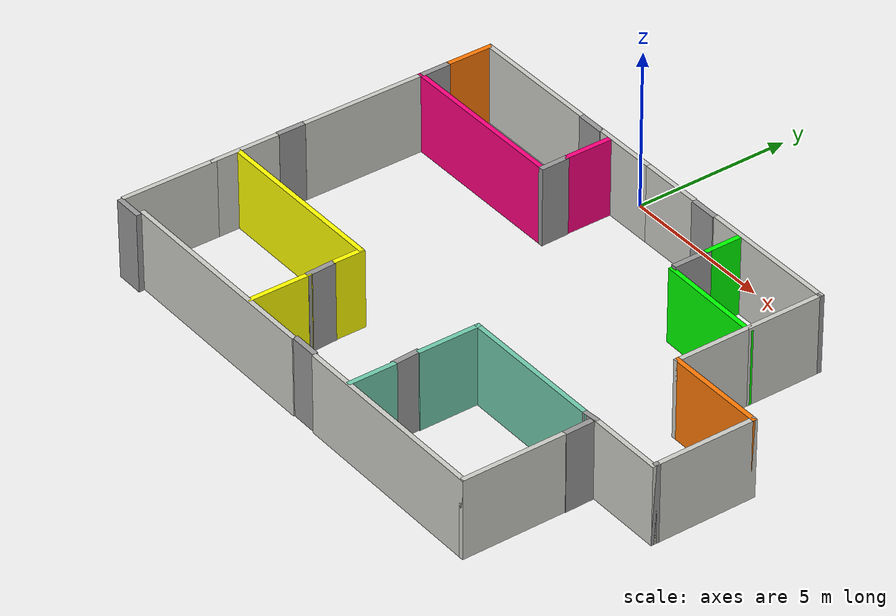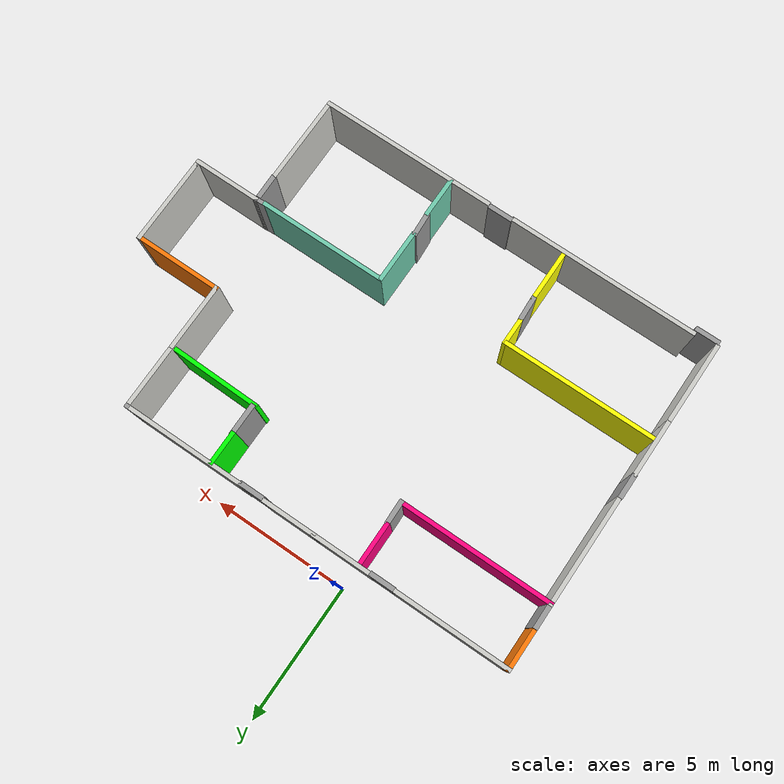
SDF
<?xml version='1.0'?>
<sdf version='1.6'>
  <model name='house'>
    <pose frame=''>3.0363 -6.8893 0 0 -0 0</pose>
    <link name='Door_1'>
      <collision name='Door_1_Collision'>
        <geometry>
          <box>
            <size>0.9 0.17 2.5</size>
          </box>
        </geometry>
        <pose frame=''>0 0 1.25 0 -0 0</pose>
      </collision>
      <visual name='Door_1_Visual'>
        <pose frame=''>0 0 1.25 0 -0 0</pose>
        <geometry>
          <box>
            <size>0.9 0.17 2.5</size>
          </box>
        </geometry>
        <material>
          <script>
            <uri>file://media/materials/scripts/gazebo.material</uri>
            <name>Gazebo/Grey</name>
          </script>
        </material>
      </visual>
      <pose frame=''>-8.7163 4.1593 0 0 -0 1.5789</pose>
    </link>
    <link name='Door_10'>
      <collision name='Door_10_Collision'>
        <geometry>
          <box>
            <size>0.9 0.17 2.5</size>
          </box>
        </geometry>
        <pose frame=''>0 0 1.25 0 -0 0</pose>
      </collision>
      <visual name='Door_10_Visual'>
        <pose frame=''>0 0 1.25 0 -0 0</pose>
        <geometry>
          <box>
            <size>0.9 0.17 2.5</size>
          </box>
        </geometry>
        <material>
          <script>
            <uri>file://media/materials/scripts/gazebo.material</uri>
            <name>Gazebo/Grey</name>
          </script>
        </material>
      </visual>
      <pose frame=''>-0.531043 -5.96555 0 0 -0 0</pose>
    </link>
    <link name='Door_12'>
      <collision name='Door_12_Collision'>
        <geometry>
          <box>
            <size>0.9 0.17 2.5</size>
          </box>
        </geometry>
        <pose frame=''>0 0 1.25 0 -0 0</pose>
      </collision>
      <visual name='Door_12_Visual'>
        <pose frame=''>0 0 1.25 0 -0 0</pose>
        <geometry>
          <box>
            <size>0.9 0.17 2.5</size>
          </box>
        </geometry>
        <material>
          <script>
            <uri>file://media/materials/scripts/gazebo.material</uri>
            <name>Gazebo/Grey</name>
          </script>
        </material>
      </visual>
      <pose frame=''>-3.03671 -3.72355 0 0 -0 1.62276</pose>
    </link>
    <link name='Door_13'>
      <collision name='Door_13_Collision'>
        <geometry>
          <box>
            <size>0.9 0.17 2.5</size>
          </box>
        </geometry>
        <pose frame=''>0 0 1.25 0 -0 0</pose>
      </collision>
      <visual name='Door_13_Visual'>
        <pose frame=''>0 0 1.25 0 -0 0</pose>
        <geometry>
          <box>
            <size>0.9 0.17 2.5</size>
          </box>
        </geometry>
        <material>
          <script>
            <uri>file://media/materials/scripts/gazebo.material</uri>
            <name>Gazebo/Grey</name>
          </script>
        </material>
      </visual>
      <pose frame=''>6.35043 -2.40266 0 0 -0 1.58874</pose>
    </link>
    <link name='Door_15'>
      <collision name='Door_15_Collision'>
        <geometry>
          <box>
            <size>0.9 0.17 2.5</size>
          </box>
        </geometry>
        <pose frame=''>0 0 1.25 0 -0 0</pose>
      </collision>
      <visual name='Door_15_Visual'>
        <pose frame=''>0 0 1.25 0 -0 0</pose>
        <geometry>
          <box>
            <size>0.9 0.17 2.5</size>
          </box>
        </geometry>
        <material>
          <script>
            <uri>file://media/materials/scripts/gazebo.material</uri>
            <name>Gazebo/Grey</name>
          </script>
        </material>
      </visual>
      <pose frame=''>1.39928 -4.18011 0 0 -0 1.63322</pose>
    </link>
    <link name='Door_2'>
      <collision name='Door_2_Collision'>
        <geometry>
          <box>
            <size>0.9 0.17 2.5</size>
          </box>
        </geometry>
        <pose frame=''>0 0 1.25 0 -0 0</pose>
      </collision>
      <visual name='Door_2_Visual'>
        <pose frame=''>0 0 1.25 0 -0 0</pose>
        <geometry>
          <box>
            <size>0.9 0.17 2.5</size>
          </box>
        </geometry>
        <material>
          <script>
            <uri>file://media/materials/scripts/gazebo.material</uri>
            <name>Gazebo/Grey</name>
          </script>
        </material>
      </visual>
      <pose frame=''>-4.10768 6.02507 0 0 -0 0</pose>
    </link>
    <link name='Door_3'>
      <collision name='Door_3_Collision'>
        <geometry>
          <box>
            <size>0.9 0.17 2.5</size>
          </box>
        </geometry>
        <pose frame=''>0 0 1.25 0 -0 0</pose>
      </collision>
      <visual name='Door_3_Visual'>
        <pose frame=''>0 0 1.25 0 -0 0</pose>
        <geometry>
          <box>
            <size>0.9 0.17 2.5</size>
          </box>
        </geometry>
        <material>
          <script>
            <uri>file://media/materials/scripts/gazebo.material</uri>
            <name>Gazebo/Grey</name>
          </script>
        </material>
      </visual>
      <pose frame=''>-3.22734 4.07462 0 0 -0 1.58824</pose>
    </link>
    <link name='Door_4'>
      <collision name='Door_4_Collision'>
        <geometry>
          <box>
            <size>0.9 0.17 2.5</size>
          </box>
        </geometry>
        <pose frame=''>0 0 1.25 0 -0 0</pose>
      </collision>
      <visual name='Door_4_Visual'>
        <pose frame=''>0 0 1.25 0 -0 0</pose>
        <geometry>
          <box>
            <size>0.9 0.17 2.5</size>
          </box>
        </geometry>
        <material>
          <script>
            <uri>file://media/materials/scripts/gazebo.material</uri>
            <name>Gazebo/Grey</name>
          </script>
        </material>
      </visual>
      <pose frame=''>0.818946 6.01439 0 0 -0 0</pose>
    </link>
    <link name='Door_5'>
      <collision name='Door_5_Collision'>
        <geometry>
          <box>
            <size>1.2 0.17 2.5</size>
          </box>
        </geometry>
        <pose frame=''>0 0 1.25 0 -0 0</pose>
      </collision>
      <visual name='Door_5_Visual'>
        <pose frame=''>0 0 1.25 0 -0 0</pose>
        <geometry>
          <box>
            <size>1.2 0.17 2.5</size>
          </box>
        </geometry>
        <material>
          <script>
            <uri>file://media/materials/scripts/gazebo.material</uri>
            <name>Gazebo/Grey</name>
          </script>
        </material>
      </visual>
      <pose frame=''>2.36879 4.36481 0 0 -0 1.56882</pose>
    </link>
    <link name='Door_6'>
      <collision name='Door_6_Collision'>
        <geometry>
          <box>
            <size>0.9 0.17 2.5</size>
          </box>
        </geometry>
        <pose frame=''>0 0 1.25 0 -0 0</pose>
      </collision>
      <visual name='Door_6_Visual'>
        <pose frame=''>0 0 1.25 0 -0 0</pose>
        <geometry>
          <box>
            <size>0.9 0.17 2.5</size>
          </box>
        </geometry>
        <material>
          <script>
            <uri>file://media/materials/scripts/gazebo.material</uri>
            <name>Gazebo/Grey</name>
          </script>
        </material>
      </visual>
      <pose frame=''>-8.73622 -0.642024 0 0 -0 1.56903</pose>
    </link>
    <link name='Door_8'>
      <collision name='Door_8_Collision'>
        <geometry>
          <box>
            <size>0.9 0.17 2.5</size>
          </box>
        </geometry>
        <pose frame=''>0 0 1.25 0 -0 0</pose>
      </collision>
      <visual name='Door_8_Visual'>
        <pose frame=''>0 0 1.25 0 -0 0</pose>
        <geometry>
          <box>
            <size>0.9 0.17 2.5</size>
          </box>
        </geometry>
        <material>
          <script>
            <uri>file://media/materials/scripts/gazebo.material</uri>
            <name>Gazebo/Grey</name>
          </script>
        </material>
      </visual>
      <pose frame=''>-8.29169 -6.18561 0 0 -0 0</pose>
    </link>
    <link name='Wall_0'>
      <collision name='Wall_0_Collision'>
        <geometry>
          <box>
            <size>1.5 0.15 2.5</size>
          </box>
        </geometry>
        <pose frame=''>0 0 1.25 0 -0 0</pose>
      </collision>
      <visual name='Wall_0_Visual'>
        <pose frame=''>0 0 1.25 0 -0 0</pose>
        <geometry>
          <box>
            <size>1.5 0.15 2.5</size>
          </box>
        </geometry>
        <material>
          <script>
            <uri>file://media/materials/scripts/gazebo.material</uri>
            <name>Gazebo/Grey</name>
          </script>
          <ambient>0.996078 0.47451 0.0196078 1</ambient>
        </material>
        <meta>
          <layer>0</layer>
        </meta>
      </visual>
      <pose frame=''>-8.7263 5.3643 0 0 0 -1.5708</pose>
    </link>
    <link name='Wall_10'>
      <collision name='Wall_10_Collision'>
        <geometry>
          <box>
            <size>2 0.15 2.5</size>
          </box>
        </geometry>
        <pose frame=''>0 0 1.25 0 -0 0</pose>
      </collision>
      <visual name='Wall_10_Visual'>
        <pose frame=''>0 0 1.25 0 -0 0</pose>
        <geometry>
          <box>
            <size>2 0.15 2.5</size>
          </box>
        </geometry>
        <material>
          <script>
            <uri>file://media/materials/scripts/gazebo.material</uri>
            <name>Gazebo/CeilingTiled</name>
          </script>
          <ambient>0.996078 0.47451 0.0196078 1</ambient>
        </material>
        <meta>
          <layer>0</layer>
        </meta>
      </visual>
      <pose frame=''>-0.635132 6.04328 0 0 -0 0</pose>
    </link>
    <link name='Wall_12'>
      <collision name='Wall_12_Collision'>
        <geometry>
          <box>
            <size>4.5 0.15 2.5</size>
          </box>
        </geometry>
        <pose frame=''>0 0 1.25 0 -0 0</pose>
      </collision>
      <visual name='Wall_12_Visual'>
        <pose frame=''>0 0 1.25 0 -0 0</pose>
        <geometry>
          <box>
            <size>4.5 0.15 2.5</size>
          </box>
        </geometry>
        <material>
          <script>
            <uri>file://media/materials/scripts/gazebo.material</uri>
            <name>Gazebo/CeilingTiled</name>
          </script>
          <ambient>0.996078 0.47451 0.0196078 1</ambient>
        </material>
        <meta>
          <layer>0</layer>
        </meta>
      </visual>
      <pose frame=''>3.4436 6.04084 0 0 -0 0</pose>
    </link>
    <link name='Wall_13'>
      <collision name='Wall_13_Collision'>
        <geometry>
          <box>
            <size>0.16 0.15 2.5</size>
          </box>
        </geometry>
        <pose frame=''>0 0 1.25 0 -0 0</pose>
      </collision>
      <visual name='Wall_13_Visual'>
        <pose frame=''>0 0 1.25 0 -0 0</pose>
        <geometry>
          <box>
            <size>0.16 0.15 2.5</size>
          </box>
        </geometry>
        <material>
          <script>
            <uri>file://media/materials/scripts/gazebo.material</uri>
            <name>Gazebo/Grey</name>
          </script>
          <ambient>1 1 1 1</ambient>
        </material>
        <meta>
          <layer>0</layer>
        </meta>
      </visual>
      <pose frame=''>5.6236 6.04084 0 0 -0 0</pose>
    </link>
    <link name='Wall_14'>
      <collision name='Wall_14_Collision'>
        <geometry>
          <box>
            <size>2.5 0.15 2.5</size>
          </box>
        </geometry>
        <pose frame=''>0 0 1.25 0 -0 0</pose>
      </collision>
      <visual name='Wall_14_Visual'>
        <pose frame=''>0 0 1.25 0 -0 0</pose>
        <geometry>
          <box>
            <size>2.5 0.15 2.5</size>
          </box>
        </geometry>
        <material>
          <script>
            <uri>file://media/materials/scripts/gazebo.material</uri>
            <name>Gazebo/CeilingTiled</name>
          </script>
          <ambient>0.996078 0.47451 0.0196078 1</ambient>
        </material>
        <meta>
          <layer>0</layer>
        </meta>
      </visual>
      <pose frame=''>5.62865 4.86607 0 0 0 -1.57075</pose>
    </link>
    <link name='Wall_16'>
      <collision name='Wall_16_Collision'>
        <geometry>
          <box>
            <size>1.25 0.15 2.5</size>
          </box>
        </geometry>
        <pose frame=''>0 0 1.25 0 -0 0</pose>
      </collision>
      <visual name='Wall_16_Visual'>
        <pose frame=''>0 0 1.25 0 -0 0</pose>
        <geometry>
          <box>
            <size>1.25 0.15 2.5</size>
          </box>
        </geometry>
        <material>
          <script>
            <uri>file://media/materials/scripts/gazebo.material</uri>
            <name>Gazebo/Grey</name>
          </script>
          <ambient>0 1 0 1</ambient>
        </material>
        <meta>
          <layer>0</layer>
        </meta>
      </visual>
      <pose frame=''>2.3586 5.44629 0 0 0 -1.5708</pose>
    </link>
    <link name='Wall_2'>
      <collision name='Wall_2_Collision'>
        <geometry>
          <box>
            <size>4.25 0.15 2.5</size>
          </box>
        </geometry>
        <pose frame=''>0 0 1.25 0 -0 0</pose>
      </collision>
      <visual name='Wall_2_Visual'>
        <pose frame=''>0 0 1.25 0 -0 0</pose>
        <geometry>
          <box>
            <size>4.25 0.15 2.5</size>
          </box>
        </geometry>
        <material>
          <script>
            <uri>file://media/materials/scripts/gazebo.material</uri>
            <name>Gazebo/CeilingTiled</name>
          </script>
          <ambient>0.996078 0.47451 0.0196078 1</ambient>
        </material>
        <meta>
          <layer>0</layer>
        </meta>
      </visual>
      <pose frame=''>-6.6763 6.0393 0 0 -0 0</pose>
    </link>
    <link name='Wall_24'>
      <collision name='Wall_24_Collision'>
        <geometry>
          <box>
            <size>3.45117 0.15 2.4</size>
          </box>
        </geometry>
        <pose frame=''>0 0 1.2 0 -0 0</pose>
      </collision>
      <visual name='Wall_24_Visual'>
        <pose frame=''>0 0 1.2 0 -0 0</pose>
        <geometry>
          <box>
            <size>3.45117 0.15 2.4</size>
          </box>
        </geometry>
        <material>
          <script>
            <uri>file://media/materials/scripts/gazebo.material</uri>
            <name>Gazebo/Grey</name>
          </script>
          <ambient>0 1 0 1</ambient>
        </material>
        <meta>
          <layer>0</layer>
        </meta>
      </visual>
      <pose frame=''>3.9782 3.7223 0 0 0 -0.01878</pose>
    </link>
    <link name='Wall_26'>
      <collision name='Wall_26_Collision'>
        <geometry>
          <box>
            <size>4 0.15 2.5</size>
          </box>
        </geometry>
        <pose frame=''>0 0 1.25 0 -0 0</pose>
      </collision>
      <visual name='Wall_26_Visual'>
        <pose frame=''>0 0 1.25 0 -0 0</pose>
        <geometry>
          <box>
            <size>4 0.15 2.5</size>
          </box>
        </geometry>
        <material>
          <script>
            <uri>file://media/materials/scripts/gazebo.material</uri>
            <name>Gazebo/CeilingTiled</name>
          </script>
          <ambient>0.996078 0.47451 0.0196078 1</ambient>
        </material>
        <meta>
          <layer>0</layer>
        </meta>
      </visual>
      <pose frame=''>-8.72412 1.77454 0 0 0 -1.5708</pose>
    </link>
    <link name='Wall_28'>
      <collision name='Wall_28_Collision'>
        <geometry>
          <box>
            <size>2.25 0.15 2.5</size>
          </box>
        </geometry>
        <pose frame=''>0 0 1.25 0 -0 0</pose>
      </collision>
      <visual name='Wall_28_Visual'>
        <pose frame=''>0 0 1.25 0 -0 0</pose>
        <geometry>
          <box>
            <size>2.25 0.15 2.5</size>
          </box>
        </geometry>
        <material>
          <script>
            <uri>file://media/materials/scripts/gazebo.material</uri>
            <name>Gazebo/CeilingTiled</name>
          </script>
          <ambient>0.996078 0.47451 0.0196078 1</ambient>
        </material>
        <meta>
          <layer>0</layer>
        </meta>
      </visual>
      <pose frame=''>-8.7287 -2.14328 0 0 0 -1.5708</pose>
    </link>
    <link name='Wall_30'>
      <collision name='Wall_30_Collision'>
        <geometry>
          <box>
            <size>3 0.15 2.5</size>
          </box>
        </geometry>
        <pose frame=''>0 0 1.25 0 -0 0</pose>
      </collision>
      <visual name='Wall_30_Visual'>
        <pose frame=''>0 0 1.25 0 -0 0</pose>
        <geometry>
          <box>
            <size>3 0.15 2.5</size>
          </box>
        </geometry>
        <material>
          <script>
            <uri>file://media/materials/scripts/gazebo.material</uri>
            <name>Gazebo/CeilingTiled</name>
          </script>
          <ambient>0.996078 0.47451 0.0196078 1</ambient>
        </material>
        <meta>
          <layer>0</layer>
        </meta>
      </visual>
      <pose frame=''>-8.7287 -4.61827 0 0 0 -1.5708</pose>
    </link>
    <link name='Wall_32'>
      <collision name='Wall_32_Collision'>
        <geometry>
          <box>
            <size>7 0.15 2.5</size>
          </box>
        </geometry>
        <pose frame=''>0 0 1.25 0 -0 0</pose>
      </collision>
      <visual name='Wall_32_Visual'>
        <pose frame=''>0 0 1.25 0 -0 0</pose>
        <geometry>
          <box>
            <size>7 0.15 2.5</size>
          </box>
        </geometry>
        <material>
          <script>
            <uri>file://media/materials/scripts/gazebo.material</uri>
            <name>Gazebo/CeilingTiled</name>
          </script>
          <ambient>0.996078 0.47451 0.0196078 1</ambient>
        </material>
        <meta>
          <layer>0</layer>
        </meta>
      </visual>
      <pose frame=''>-4.45126 -6.0098 0 0 -0 0</pose>
    </link>
    <link name='Wall_34'>
      <collision name='Wall_34_Collision'>
        <geometry>
          <box>
            <size>6.5 0.15 2.5</size>
          </box>
        </geometry>
        <pose frame=''>0 0 1.25 0 -0 0</pose>
      </collision>
      <visual name='Wall_34_Visual'>
        <pose frame=''>0 0 1.25 0 -0 0</pose>
        <geometry>
          <box>
            <size>6.5 0.15 2.5</size>
          </box>
        </geometry>
        <material>
          <script>
            <uri>file://media/materials/scripts/gazebo.material</uri>
            <name>Gazebo/CeilingTiled</name>
          </script>
          <ambient>0.996078 0.47451 0.0196078 1</ambient>
        </material>
        <meta>
          <layer>0</layer>
        </meta>
      </visual>
      <pose frame=''>3.17494 -6.0098 0 0 -0 0</pose>
    </link>
    <link name='Wall_36'>
      <collision name='Wall_36_Collision'>
        <geometry>
          <box>
            <size>2 0.15 2.5</size>
          </box>
        </geometry>
        <pose frame=''>0 0 1.25 0 -0 0</pose>
      </collision>
      <visual name='Wall_36_Visual'>
        <pose frame=''>0 0 1.25 0 -0 0</pose>
        <geometry>
          <box>
            <size>2 0.15 2.5</size>
          </box>
        </geometry>
        <material>
          <script>
            <uri>file://media/materials/scripts/gazebo.material</uri>
            <name>Gazebo/Grey</name>
          </script>
          <ambient>1 1 0 1</ambient>
        </material>
        <meta>
          <layer>0</layer>
        </meta>
      </visual>
      <pose frame=''>-3.00895 -5.04055 0 0 -0 1.5708</pose>
    </link>
    <link name='Wall_38'>
      <collision name='Wall_38_Collision'>
        <geometry>
          <box>
            <size>1.00024 0.15 2.5</size>
          </box>
        </geometry>
        <pose frame=''>0 0 1.25 0 -0 0</pose>
      </collision>
      <visual name='Wall_38_Visual'>
        <pose frame=''>0 0 1.25 0 -0 0</pose>
        <geometry>
          <box>
            <size>1.00024 0.15 2.5</size>
          </box>
        </geometry>
        <material>
          <script>
            <uri>file://media/materials/scripts/gazebo.material</uri>
            <name>Gazebo/Grey</name>
          </script>
          <ambient>1 1 0 1</ambient>
        </material>
        <meta>
          <layer>0</layer>
        </meta>
      </visual>
      <pose frame=''>-3.06621 -2.80482 0 0 -0 1.57091</pose>
    </link>
    <link name='Wall_4'>
      <collision name='Wall_4_Collision'>
        <geometry>
          <box>
            <size>2.25 0.15 2.5</size>
          </box>
        </geometry>
        <pose frame=''>0 0 1.25 0 -0 0</pose>
      </collision>
      <visual name='Wall_4_Visual'>
        <pose frame=''>0 0 1.25 0 -0 0</pose>
        <geometry>
          <box>
            <size>2.25 0.15 2.5</size>
          </box>
        </geometry>
        <material>
          <script>
            <uri>file://media/materials/scripts/gazebo.material</uri>
            <name>Gazebo/CeilingTiled</name>
          </script>
          <ambient>0.996078 0.47451 0.0196078 1</ambient>
        </material>
        <meta>
          <layer>0</layer>
        </meta>
      </visual>
      <pose frame=''>-2.61013 6.04328 0 0 -0 0</pose>
    </link>
    <link name='Wall_44'>
      <collision name='Wall_44_Collision'>
        <geometry>
          <box>
            <size>5.69752 0.15 2.5</size>
          </box>
        </geometry>
        <pose frame=''>0 0 1.25 0 -0 0</pose>
      </collision>
      <visual name='Wall_44_Visual'>
        <pose frame=''>0 0 1.25 0 -0 0</pose>
        <geometry>
          <box>
            <size>5.69752 0.15 2.5</size>
          </box>
        </geometry>
        <material>
          <script>
            <uri>file://media/materials/scripts/gazebo.material</uri>
            <name>Gazebo/Grey</name>
          </script>
          <ambient>1 1 0 1</ambient>
        </material>
        <meta>
          <layer>0</layer>
        </meta>
      </visual>
      <pose frame=''>-5.88754 -2.3797 0 0 -0 3.14159</pose>
    </link>
    <link name='Wall_47'>
      <collision name='Wall_47_Collision'>
        <geometry>
          <box>
            <size>3.25 0.15 2.5</size>
          </box>
        </geometry>
        <pose frame=''>0 0 1.25 0 -0 0</pose>
      </collision>
      <visual name='Wall_47_Visual'>
        <pose frame=''>0 0 1.25 0 -0 0</pose>
        <geometry>
          <box>
            <size>3.25 0.15 2.5</size>
          </box>
        </geometry>
        <material>
          <script>
            <uri>file://media/materials/scripts/gazebo.material</uri>
            <name>Gazebo/CeilingTiled</name>
          </script>
          <ambient>0.996078 0.47451 0.0196078 1</ambient>
        </material>
        <meta>
          <layer>0</layer>
        </meta>
      </visual>
      <pose frame=''>6.34994 -4.4598 0 0 -0 1.5708</pose>
    </link>
    <link name='Wall_49'>
      <collision name='Wall_49_Collision'>
        <geometry>
          <box>
            <size>2.5 0.15 2.5</size>
          </box>
        </geometry>
        <pose frame=''>0 0 1.25 0 -0 0</pose>
      </collision>
      <visual name='Wall_49_Visual'>
        <pose frame=''>0 0 1.25 0 -0 0</pose>
        <geometry>
          <box>
            <size>2.5 0.15 2.5</size>
          </box>
        </geometry>
        <material>
          <script>
            <uri>file://media/materials/scripts/gazebo.material</uri>
            <name>Gazebo/CeilingTiled</name>
          </script>
          <ambient>0.996078 0.47451 0.0196078 1</ambient>
        </material>
        <meta>
          <layer>0</layer>
        </meta>
      </visual>
      <pose frame=''>5.6287 2.5163 0 0 0 -1.5708</pose>
    </link>
    <link name='Wall_50'>
      <collision name='Wall_50_Collision'>
        <geometry>
          <box>
            <size>3.25 0.15 2.5</size>
          </box>
        </geometry>
        <pose frame=''>0 0 1.25 0 -0 0</pose>
      </collision>
      <visual name='Wall_50_Visual'>
        <pose frame=''>0 0 1.25 0 -0 0</pose>
        <geometry>
          <box>
            <size>3.25 0.15 2.5</size>
          </box>
        </geometry>
        <material>
          <script>
            <uri>file://media/materials/scripts/gazebo.material</uri>
            <name>Gazebo/Grey</name>
          </script>
          <ambient>0.996078 0.47451 0.0196078 1</ambient>
        </material>
        <meta>
          <layer>0</layer>
        </meta>
      </visual>
      <pose frame=''>7.1787 1.3413 0 0 -0 0</pose>
    </link>
    <link name='Wall_51'>
      <collision name='Wall_51_Collision'>
        <geometry>
          <box>
            <size>3.25 0.15 2.5</size>
          </box>
        </geometry>
        <pose frame=''>0 0 1.25 0 -0 0</pose>
      </collision>
      <visual name='Wall_51_Visual'>
        <pose frame=''>0 0 1.25 0 -0 0</pose>
        <geometry>
          <box>
            <size>3.25 0.15 2.5</size>
          </box>
        </geometry>
        <material>
          <script>
            <uri>file://media/materials/scripts/gazebo.material</uri>
            <name>Gazebo/CeilingTiled</name>
          </script>
          <ambient>0.996078 0.47451 0.0196078 1</ambient>
        </material>
        <meta>
          <layer>0</layer>
        </meta>
      </visual>
      <pose frame=''>8.7287 -0.208696 0 0 0 -1.5708</pose>
    </link>
    <link name='Wall_52'>
      <collision name='Wall_52_Collision'>
        <geometry>
          <box>
            <size>0.25 0.15 2.5</size>
          </box>
        </geometry>
        <pose frame=''>0 0 1.25 0 -0 0</pose>
      </collision>
      <visual name='Wall_52_Visual'>
        <pose frame=''>0 0 1.25 0 -0 0</pose>
        <geometry>
          <box>
            <size>0.25 0.15 2.5</size>
          </box>
        </geometry>
        <material>
          <script>
            <uri>file://media/materials/scripts/gazebo.material</uri>
            <name>Gazebo/Grey</name>
          </script>
          <ambient>1 1 1 1</ambient>
        </material>
        <meta>
          <layer>0</layer>
        </meta>
      </visual>
      <pose frame=''>8.7287 -1.8087 0 0 0 -1.5708</pose>
    </link>
    <link name='Wall_53'>
      <collision name='Wall_53_Collision'>
        <geometry>
          <box>
            <size>2.5 0.15 2.5</size>
          </box>
        </geometry>
        <pose frame=''>0 0 1.25 0 -0 0</pose>
      </collision>
      <visual name='Wall_53_Visual'>
        <pose frame=''>0 0 1.25 0 -0 0</pose>
        <geometry>
          <box>
            <size>2.5 0.15 2.5</size>
          </box>
        </geometry>
        <material>
          <script>
            <uri>file://media/materials/scripts/gazebo.material</uri>
            <name>Gazebo/CeilingTiled</name>
          </script>
          <ambient>0.996078 0.47451 0.0196078 1</ambient>
        </material>
        <meta>
          <layer>0</layer>
        </meta>
      </visual>
      <pose frame=''>7.5537 -1.8587 0 0 -0 3.14159</pose>
    </link>
    <link name='Wall_55'>
      <collision name='Wall_55_Collision'>
        <geometry>
          <box>
            <size>1.5 0.15 2.5</size>
          </box>
        </geometry>
        <pose frame=''>0 0 1.25 0 -0 0</pose>
      </collision>
      <visual name='Wall_55_Visual'>
        <pose frame=''>0 0 1.25 0 -0 0</pose>
        <geometry>
          <box>
            <size>1.5 0.15 2.5</size>
          </box>
        </geometry>
        <material>
          <script>
            <uri>file://media/materials/scripts/gazebo.material</uri>
            <name>Gazebo/Grey</name>
          </script>
          <ambient>0.435294 0.796078 0.67451 1</ambient>
        </material>
        <meta>
          <layer>0</layer>
        </meta>
      </visual>
      <pose frame=''>1.44668 -5.28403 0 0 -0 1.5708</pose>
    </link>
    <link name='Wall_57'>
      <collision name='Wall_57_Collision'>
        <geometry>
          <box>
            <size>2 0.15 2.5</size>
          </box>
        </geometry>
        <pose frame=''>0 0 1.25 0 -0 0</pose>
      </collision>
      <visual name='Wall_57_Visual'>
        <pose frame=''>0 0 1.25 0 -0 0</pose>
        <geometry>
          <box>
            <size>2 0.15 2.5</size>
          </box>
        </geometry>
        <material>
          <script>
            <uri>file://media/materials/scripts/gazebo.material</uri>
            <name>Gazebo/Grey</name>
          </script>
          <ambient>0.435294 0.796078 0.67451 1</ambient>
        </material>
        <meta>
          <layer>0</layer>
        </meta>
      </visual>
      <pose frame=''>1.41818 -2.81579 0 0 -0 1.5708</pose>
    </link>
    <link name='Wall_58'>
      <collision name='Wall_58_Collision'>
        <geometry>
          <box>
            <size>4.75 0.15 2.5</size>
          </box>
        </geometry>
        <pose frame=''>0 0 1.25 0 -0 0</pose>
      </collision>
      <visual name='Wall_58_Visual'>
        <pose frame=''>0 0 1.25 0 -0 0</pose>
        <geometry>
          <box>
            <size>4.75 0.15 2.5</size>
          </box>
        </geometry>
        <material>
          <script>
            <uri>file://media/materials/scripts/gazebo.material</uri>
            <name>Gazebo/Grey</name>
          </script>
          <ambient>0.435294 0.796078 0.67451 1</ambient>
        </material>
        <meta>
          <layer>0</layer>
        </meta>
      </visual>
      <pose frame=''>3.71818 -1.89079 0 0 -0 0</pose>
    </link>
    <link name='Wall_59'>
      <collision name='Wall_59_Collision'>
        <geometry>
          <box>
            <size>0.511942 0.15 2.5</size>
          </box>
        </geometry>
        <pose frame=''>0 0 1.25 0 -0 0</pose>
      </collision>
      <visual name='Wall_59_Visual'>
        <pose frame=''>0 0 1.25 0 -0 0</pose>
        <geometry>
          <box>
            <size>0.511942 0.15 2.5</size>
          </box>
        </geometry>
        <material>
          <script>
            <uri>file://media/materials/scripts/gazebo.material</uri>
            <name>Gazebo/Grey</name>
          </script>
          <ambient>1 1 1 1</ambient>
        </material>
        <meta>
          <layer>0</layer>
        </meta>
      </visual>
      <pose frame=''>6.19844 -1.87474 0 0 -0 0.088787</pose>
    </link>
    <link name='Wall_6'>
      <collision name='Wall_6_Collision'>
        <geometry>
          <box>
            <size>5.5 0.15 2.5</size>
          </box>
        </geometry>
        <pose frame=''>0 0 1.25 0 -0 0</pose>
      </collision>
      <visual name='Wall_6_Visual'>
        <pose frame=''>0 0 1.25 0 -0 0</pose>
        <geometry>
          <box>
            <size>5.5 0.15 2.5</size>
          </box>
        </geometry>
        <material>
          <script>
            <uri>file://media/materials/scripts/gazebo.material</uri>
            <name>Gazebo/Grey</name>
          </script>
          <ambient>1 0 0.498039 1</ambient>
        </material>
        <meta>
          <layer>0</layer>
        </meta>
      </visual>
      <pose frame=''>-6.04912 3.69954 0 0 -0 0</pose>
    </link>
    <link name='Wall_8'>
      <collision name='Wall_8_Collision'>
        <geometry>
          <box>
            <size>1.52 0.15 2.5</size>
          </box>
        </geometry>
        <pose frame=''>0 0 1.25 0 -0 0</pose>
      </collision>
      <visual name='Wall_8_Visual'>
        <pose frame=''>0 0 1.25 0 -0 0</pose>
        <geometry>
          <box>
            <size>1.52 0.15 2.5</size>
          </box>
        </geometry>
        <material>
          <script>
            <uri>file://media/materials/scripts/gazebo.material</uri>
            <name>Gazebo/Grey</name>
          </script>
          <ambient>1 0 0.498039 1</ambient>
        </material>
        <meta>
          <layer>0</layer>
        </meta>
      </visual>
      <pose frame=''>-3.2453 5.2083 0 0 -0 1.5708</pose>
    </link>
    <static>1</static>
  </model>
</sdf>
